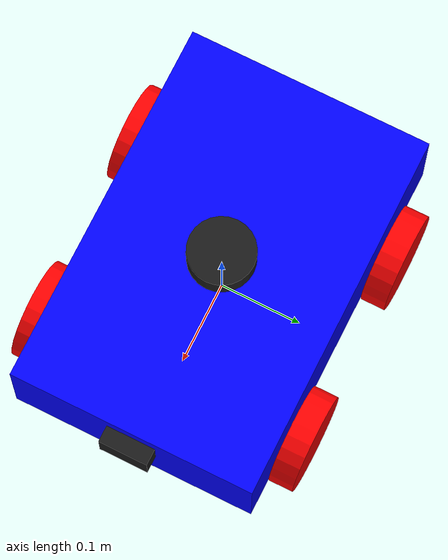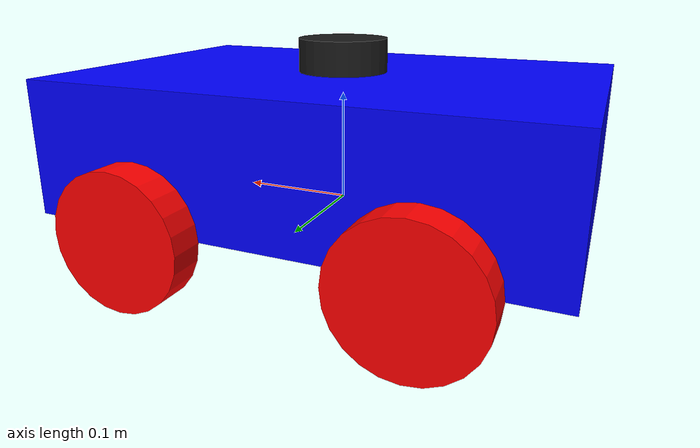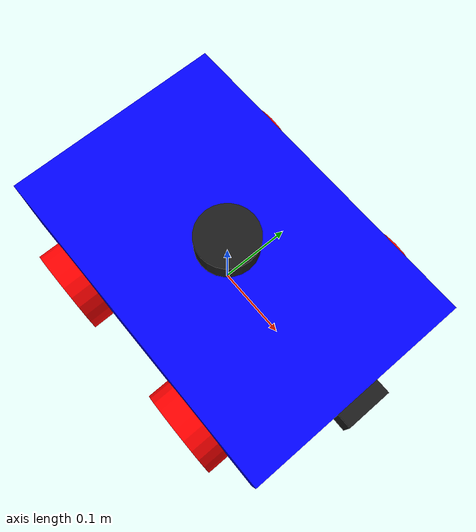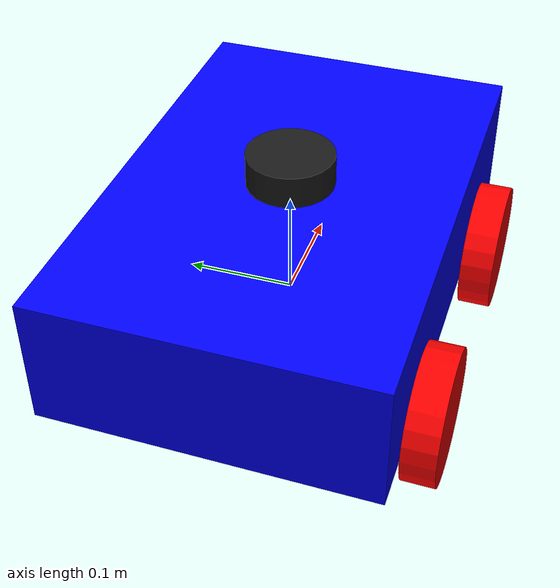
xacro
<?xml version="1.0"?>
<robot name="mobile_robot" xmlns:xacro="http://www.ros.org/wiki/xacro">

	<material name="blue"> <color rgba="0.0 0.0 1.0 1"/></material>
	<material name="red"> <color rgba="1.0 0.0 0.0 1"/></material>
	<material name="black"> <color rgba="0.1 0.1 0.1 1"/></material>

	<link name="base_footprint"/>

	<joint name="base_footprint_joint" type="fixed">
		<parent link = "base_footprint"/>
		<child link = "chassis"/>
		<origin xyz="0 0 0.06" rpy="0 0 0"/>
	</joint>

	<link name="chassis">
		<inertial>
			<mass value="2"/>
			<inertia ixx="0.03375" ixy="0" ixz="0"
				 iyy="0.015"   iyz="0"
				 izz="0.04875"/>
		</inertial>
		<visual>
			<geometry><box size="0.45 0.3 0.12"/></geometry>
			<material name="blue"/>
		</visual>
		<collision>
			<geometry><box size="0.45 0.3 0.12"/></geometry>
		</collision>
	</link>

	<xacro:macro name="wheel" params="name x y">
		<link name = "${name}">
			<inertial>
				<mass value="1"/>
				<inertia ixx="0.000975" ixy="0" ixz="0"
					 iyy="0.000975" iyz="0"
					 izz="0.0018"/>
			</inertial>
			<visual>
				<origin xyz="0 0 0" rpy="1.5707963 0 0"/>
				<geometry><cylinder radius="0.06" length="0.03"/></geometry>
				<material name="red"/>
			</visual>
			<collision>
				<origin xyz="0 0 0" rpy="1.5707963 0 0"/>
				<geometry><cylinder radius="0.06" length="0.03"/></geometry>
			</collision>
		</link>

		<joint name="${name}_joint" type="continuous">
			<parent link="chassis"/>
			<child link="${name}"/>
			<origin xyz="${x} ${y} -0.06" rpy="0 0 0"/>
			<axis xyz="0 1 0"/>
			<dynamics damping="0.05" friction="0.05"/>
		</joint>
	</xacro:macro>

	<xacro:wheel name="front_left_wheel" x=" 0.12" y=" 0.165"/>
	<xacro:wheel name="rear_left_wheel" x="-0.12" y=" 0.165"/>
	<xacro:wheel name="front_right_wheel" x=" 0.12" y="-0.165"/>
	<xacro:wheel name="rear_right_wheel" x="-0.12" y="-0.165"/>

	<link name="lidar_frame">
		<inertial>
			<mass value="0.1"/>
			<inertia ixx="0.000975" ixy="0" ixz="0"
				 iyy="0.000975" iyz="0"
				 izz="0.0018"/>
		</inertial>
		<visual>
			<geometry><cylinder radius="0.04" length="0.03"/></geometry>
			<material name="black"/>
		</visual>
		<collision>
			<geometry><cylinder radius="0.04" length="0.03"/></geometry>
		</collision>
	</link>

	<joint name="lidar_frame_joint" type="fixed">
		<parent link="chassis"/>
		<child link="lidar_frame"/>
		<origin xyz="0 0 0.075" rpy="0 0 0"/>
	</joint>
	<link name ="imu_link">
		<inertial>
			<mass value="0.01"/>
				<inertia ixx="0.00001" ixy="0" ixz="0"
					 iyy="0.00001" iyz="0"
					 izz="0.00001"/>
		</inertial>
		<visual>
			<geometry><box size="0.03 0.03 0.01"/></geometry>
			<material name="black"/>
		</visual>
	</link>
	<joint name="imu_joint" type="fixed">
		<parent link="chassis"/>
		<child link="imu_link"/>
		<origin xyz="0 0 0.06" rpy="0 0 0"/>
	</joint>
	<link name="camera_link">
		<inertial>
			<mass value="0.05"/>
			<inertia ixx="0.00001" ixy="0" ixz="0"
				 iyy="0.00001" iyz="0"
				 izz="0.00001"/>
		</inertial>
		<visual>
			<geometry><box size="0.04 0.06 0.04"/></geometry>
			<material name="black"/>
		</visual>
		<collision>
			<geometry><box size="0.04 0.06 0.04"/></geometry>
		</collision>
	</link>
	<joint name="camera_joint" type="fixed">
		<parent link="chassis"/>
		<child link="camera_link"/>
		<origin xyz="0.225 0 0.02" rpy="0 0 0"/>
	</joint>
	<link name="camera_optical_link"/>
	<joint name="camera_optical_joint" type="fixed">
		<parent link="camera_link"/>
		<child link="camera_optical_link"/>
		<origin xyz="0 0 0" rpy="${-pi/2} 0 ${-pi/2}"/>
	</joint>
	<gazebo reference="lidar_frame">
		<sensor name="lidar" type="gpu_lidar">
			<pose>0 0 0 0 0 0</pose>
			<visualize>true</visualize>
			<update_rate>10</update_rate>
			<lidar>
				<scan>
					<horizontal>
						<samples>360</samples>
						<resolution>1</resolution>
						<min_angle>-3.14159</min_angle>
						<max_angle>3.14159</max_angle>
					</horizontal>
				</scan>
				<range>
					<min>0.3</min>
					<max>12.0</max>
					<resolution>0.01</resolution>
				</range>
				<noise>
					<type>gaussian</type>
					<mean>0.0</mean>
					<stddev>0.01</stddev>
				</noise>
			</lidar>
			<topic>scan</topic>
			<gz_frame_id>lidar_frame</gz_frame_id>
		</sensor>
	</gazebo>
	<gazebo reference="imu_link">
		<sensor name="imu_sensor" type="imu">
			<always_on>true</always_on>
			<update_rate>100</update_rate>
			<visualize>true</visualize>
			<topic>imu</topic>
			<gz_frame_id>imu_link</gz_frame_id>
			<imu>
				<angular_velocity>
					<x><noise type="gaussian"><mean>0</mean><stddev>0.009</stddev></noise></x>
					<y><noise type="gaussian"><mean>0</mean><stddev>0.009</stddev></noise></y>
					<z><noise type="gaussian"><mean>0</mean><stddev>0.009</stddev></noise></z>
				</angular_velocity>
				<linear_acceleration>
					<x><noise type="gaussian"><mean>0</mean><stddev>0.1</stddev></noise></x>
					<y><noise type="gaussian"><mean>0</mean><stddev>0.1</stddev></noise></y>
					<z><noise type="gaussian"><mean>0</mean><stddev>0.1</stddev></noise></z>
				</linear_acceleration>
			</imu>
		</sensor>
	</gazebo>
	<gazebo reference="camera_link">
		<sensor name="camera_link" type="camera">
			<always_on>true</always_on>
			<update_rate>30</update_rate>
			<visualize>true</visualize>
			<topic>camera/image_raw</topic>
			<gz_frame_id>camera_optical_link</gz_frame_id>
			<camera>
				<horizontal_fov>1.047</horizontal_fov>
				<image>
					<width>640</width>
					<height>480</height>
					<format>R8G8B8</format>
				</image>
				<clip>
					<near>0.1</near>
					<far>100</far>
				</clip>
				<noise>
					<type>gaussian</type>
					<mean>0.0</mean>
					<stddev>0.007</stddev>
				</noise>
			</camera>
		</sensor>
	</gazebo>
	<gazebo>
		<plugin filename="gz-sim-diff-drive-system" name="gz::sim::systems::DiffDrive">
			<left_joint>front_left_wheel_joint</left_joint>
			<left_joint>rear_left_wheel_joint</left_joint>
			<right_joint>front_right_wheel_joint</right_joint>
			<right_joint>rear_right_wheel_joint</right_joint>
			<wheel_separation>0.48</wheel_separation>
			<wheel_radius>0.06</wheel_radius>
			<topic>/cmd_vel</topic>
			<odom_topic>/odom</odom_topic>
			<frame_id>odom</frame_id>
			<child_frame_id>base_footprint</child_frame_id>
		</plugin>
	</gazebo>
	<gazebo>
		<plugin filename="gz-sim-joint-state-publisher-system" name="gz::sim::systems::JointStatePublisher">
			<topic>joint_states</topic>
			<joint_name>front_left_wheel_joint</joint_name>
			<joint_name>rear_left_wheel_joint</joint_name>
			<joint_name>front_right_wheel_joint</joint_name>
			<joint_name>rear_right_wheel_joint</joint_name>
		</plugin>
	</gazebo>
	<xacro:macro name="wheel_gazebo" params="name">
		<gazebo reference="${name}">
			<mu1>1.0</mu1>
			<mu2>1.0</mu2>
			<kp>1e6</kp>
			<kd>1.0</kd>
			<minDepth>0.001</minDepth>
		</gazebo>
	</xacro:macro>
	<xacro:wheel_gazebo name="front_left_wheel"/>
	<xacro:wheel_gazebo name="rear_left_wheel"/>
	<xacro:wheel_gazebo name="front_right_wheel"/>
	<xacro:wheel_gazebo name="rear_right_wheel"/>
</robot>
